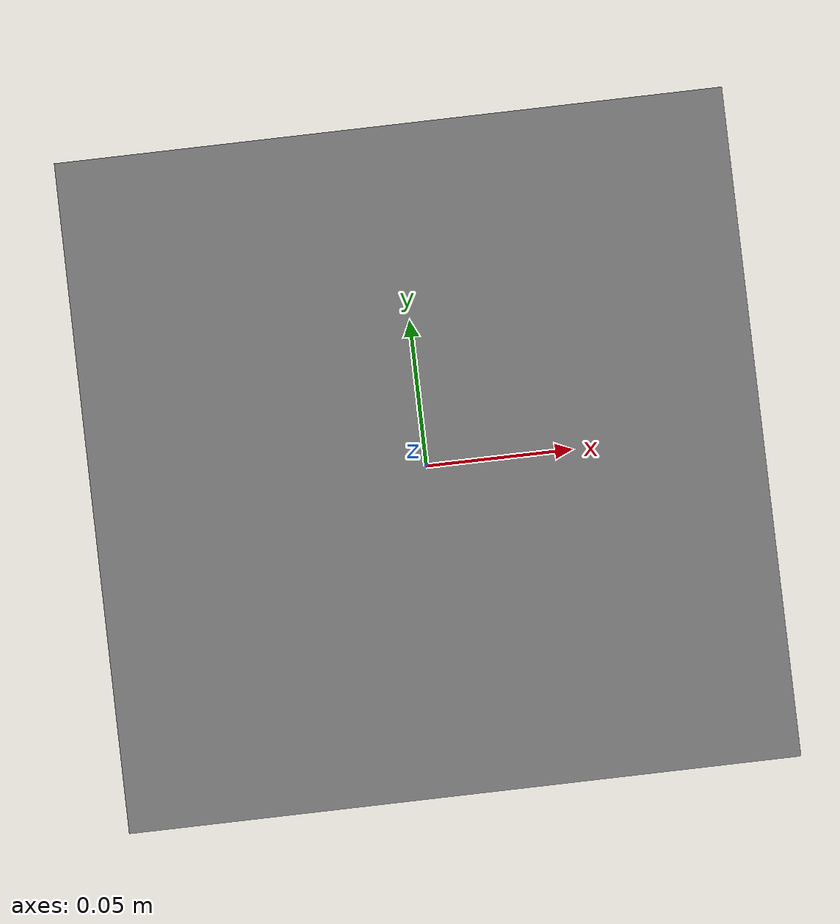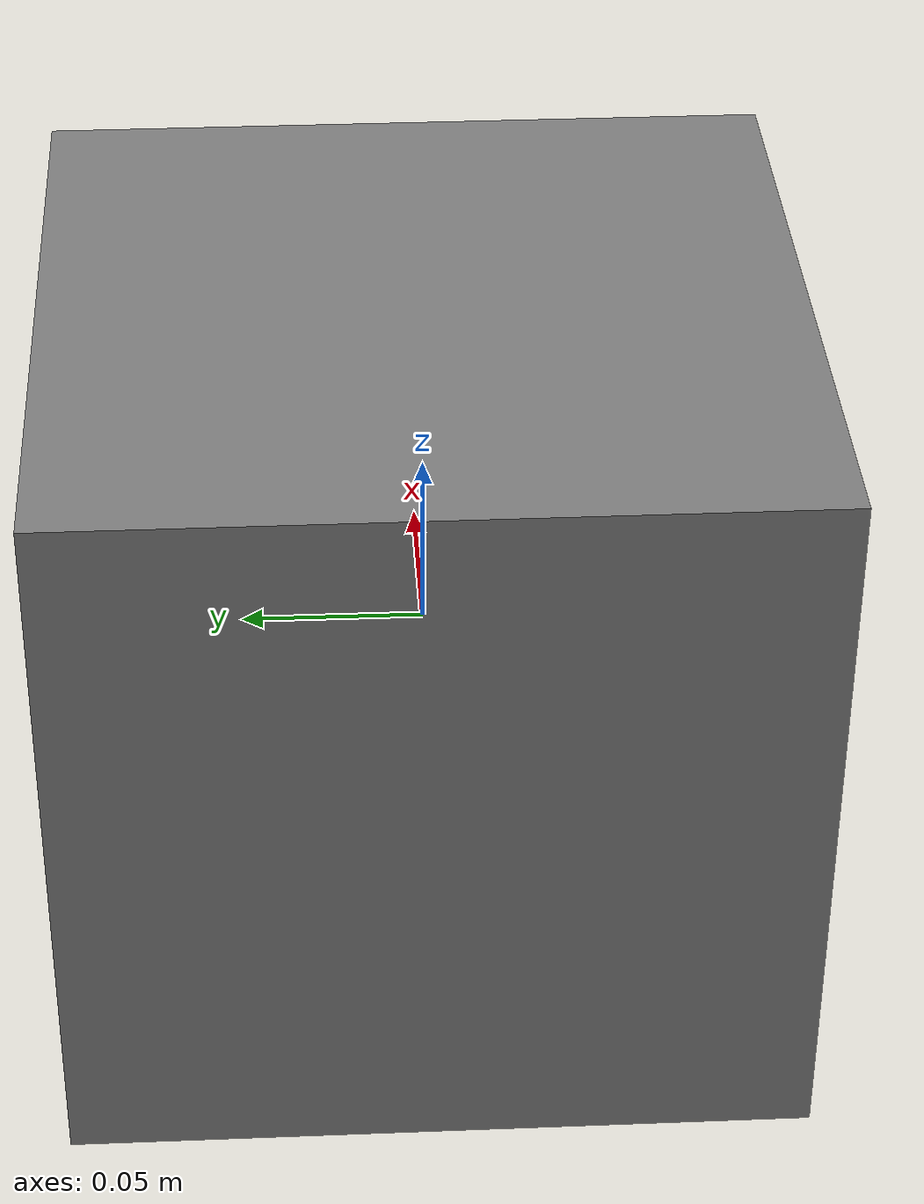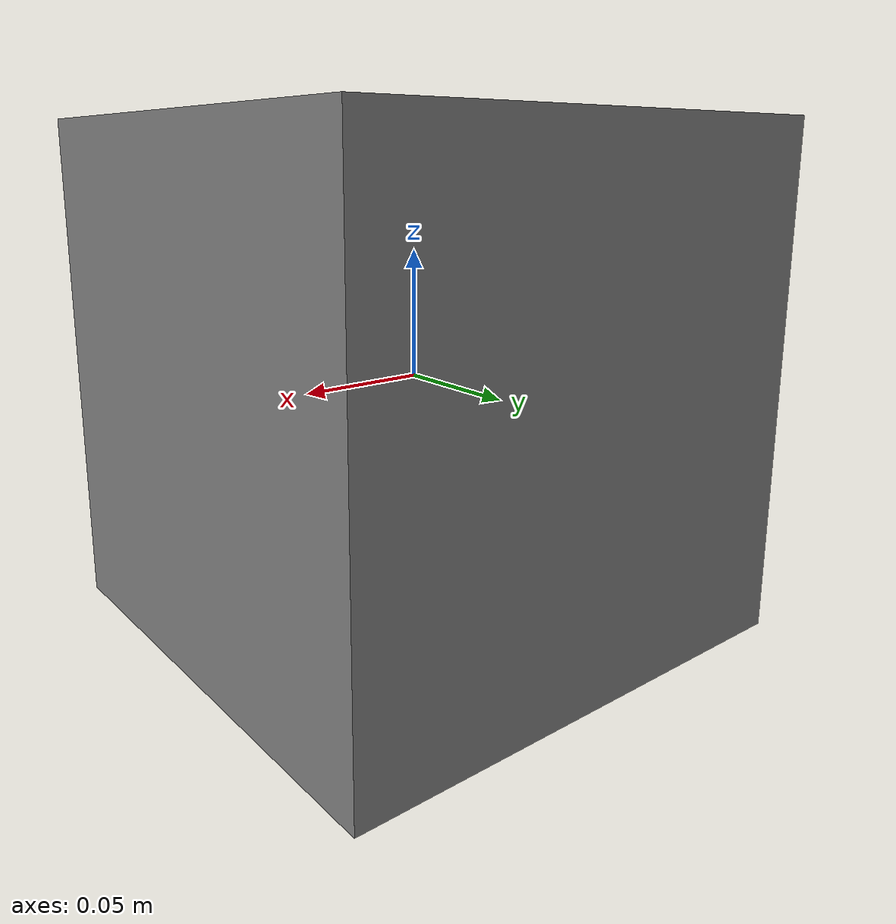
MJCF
<mujoco model="slide_position"><worldbody><body name="base"><geom type="box" size="0.1 0.1 0.1" mass="1"/><body name="slider"><joint name="linear" type="slide" axis="1 0 0" range="0 0.3" limited="true"/><geom type="sphere" size="0.04" mass="0.2"/></body></body></worldbody><actuator><position name="slider_servo" joint="linear" kp="120" kv="5" ctrlrange="0 0.3" ctrllimited="true"/></actuator></mujoco>
